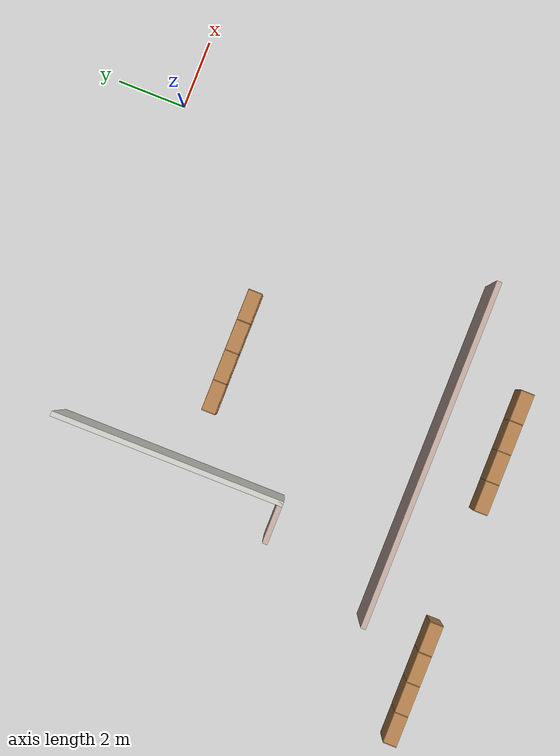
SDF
<sdf version="1.6">
 <world name="default">
  <model name="ground_plane">
   <static>1</static>
   <link name="link">
    <collision name="collision">
     <geometry><plane><normal>0 0 1</normal><size>100 100</size></plane></geometry>
     <surface><friction><ode><mu>100</mu><mu2>50</mu2></ode></friction></surface>
    </collision>
    <visual name="visual">
     <cast_shadows>0</cast_shadows>
     <geometry><plane><normal>0 0 1</normal><size>100 100</size></plane></geometry>
     <material>
      <script><uri>file://media/materials/scripts/gazebo.material</uri><name>Gazebo/Grey</name></script>
     </material>
    </visual>
   </link>
  </model>
  <model name="floor">
   <link name="Wall_107">
    <pose>-7.93599 -8.73612 0 0 -0 0</pose>
    <visual name="Wall_107_Visual">
     <pose>0 0 1.25 0 -0 0</pose>
     <geometry><box><size>10.0936 0.15 2.5</size></box></geometry>
     <material>
      <script><uri>file://media/materials/scripts/gazebo.material</uri><name>Gazebo/Grey</name></script>
      <ambient>0.760784 0.662745 0.627451 1</ambient>
     </material>
     <meta><layer>0</layer></meta>
    </visual>
    <collision name="Wall_107_Collision">
     <pose>0 0 1.25 0 -0 0</pose>
     <geometry><box><size>10.0936 0.15 2.5</size></box></geometry>
     <surface>
      <friction>
       <ode><mu>1</mu><mu2>1</mu2><fdir1>0 0 0</fdir1><slip1>0</slip1><slip2>0</slip2></ode>
       <torsional>
        <coefficient>1</coefficient>
        <patch_radius>0</patch_radius>
        <surface_radius>0</surface_radius>
        <use_patch_radius>1</use_patch_radius>
        <ode><slip>0</slip></ode>
       </torsional>
      </friction>
      <bounce><restitution_coefficient>0</restitution_coefficient><threshold>1e+06</threshold></bounce>
      <contact>
       <collide_without_contact>0</collide_without_contact>
       <collide_without_contact_bitmask>1</collide_without_contact_bitmask>
       <collide_bitmask>1</collide_bitmask>
       <ode>
        <soft_cfm>0</soft_cfm>
        <soft_erp>0.2</soft_erp>
        <kp>1e+13</kp>
        <kd>1</kd>
        <max_vel>0.01</max_vel>
        <min_depth>0</min_depth>
       </ode>
       <bullet>
        <split_impulse>1</split_impulse>
        <split_impulse_penetration_threshold>-0.01</split_impulse_penetration_threshold>
        <soft_cfm>0</soft_cfm>
        <soft_erp>0.2</soft_erp>
        <kp>1e+13</kp>
        <kd>1</kd>
       </bullet>
      </contact>
     </surface>
    </collision>
   </link>
   <link name="Wall_202">
    <pose>-10.6495 -2.11807 0 0 -0 1.5708</pose>
    <visual name="Wall_202_Visual">
     <pose>0 0 1.25 0 -0 0</pose>
     <geometry><box><size>6.75 0.15 2.5</size></box></geometry>
     <material>
      <script><uri>file://media/materials/scripts/gazebo.material</uri><name>Gazebo/CeilingTiled</name></script>
      <ambient>0.760784 0.662745 0.627451 1</ambient>
     </material>
     <meta><layer>0</layer></meta>
    </visual>
    <collision name="Wall_202_Collision">
     <pose>0 0 1.25 0 -0 0</pose>
     <geometry><box><size>6.75 0.15 2.5</size></box></geometry>
     <surface>
      <friction>
       <ode><mu>1</mu><mu2>1</mu2><fdir1>0 0 0</fdir1><slip1>0</slip1><slip2>0</slip2></ode>
       <torsional>
        <coefficient>1</coefficient>
        <patch_radius>0</patch_radius>
        <surface_radius>0</surface_radius>
        <use_patch_radius>1</use_patch_radius>
        <ode><slip>0</slip></ode>
       </torsional>
      </friction>
      <bounce><restitution_coefficient>0</restitution_coefficient><threshold>1e+06</threshold></bounce>
      <contact>
       <collide_without_contact>0</collide_without_contact>
       <collide_without_contact_bitmask>1</collide_without_contact_bitmask>
       <collide_bitmask>1</collide_bitmask>
       <ode>
        <soft_cfm>0</soft_cfm>
        <soft_erp>0.2</soft_erp>
        <kp>1e+13</kp>
        <kd>1</kd>
        <max_vel>0.01</max_vel>
        <min_depth>0</min_depth>
       </ode>
       <bullet>
        <split_impulse>1</split_impulse>
        <split_impulse_penetration_threshold>-0.01</split_impulse_penetration_threshold>
        <soft_cfm>0</soft_cfm>
        <soft_erp>0.2</soft_erp>
        <kp>1e+13</kp>
        <kd>1</kd>
       </bullet>
      </contact>
     </surface>
    </collision>
   </link>
   <link name="Wall_215">
    <pose>-11.1995 -5.41807 0 0 -0 3.14159</pose>
    <visual name="Wall_215_Visual">
     <pose>0 0 1.25 0 -0 0</pose>
     <geometry><box><size>1.25 0.15 2.5</size></box></geometry>
     <material>
      <script><uri>file://media/materials/scripts/gazebo.material</uri><name>Gazebo/Grey</name></script>
      <ambient>0.760784 0.662745 0.627451 1</ambient>
     </material>
     <meta><layer>0</layer></meta>
    </visual>
    <collision name="Wall_215_Collision">
     <pose>0 0 1.25 0 -0 0</pose>
     <geometry><box><size>1.25 0.15 2.5</size></box></geometry>
     <surface>
      <friction>
       <ode><mu>1</mu><mu2>1</mu2><fdir1>0 0 0</fdir1><slip1>0</slip1><slip2>0</slip2></ode>
       <torsional>
        <coefficient>1</coefficient>
        <patch_radius>0</patch_radius>
        <surface_radius>0</surface_radius>
        <use_patch_radius>1</use_patch_radius>
        <ode><slip>0</slip></ode>
       </torsional>
      </friction>
      <bounce><restitution_coefficient>0</restitution_coefficient><threshold>1e+06</threshold></bounce>
      <contact>
       <collide_without_contact>0</collide_without_contact>
       <collide_without_contact_bitmask>1</collide_without_contact_bitmask>
       <collide_bitmask>1</collide_bitmask>
       <ode>
        <soft_cfm>0</soft_cfm>
        <soft_erp>0.2</soft_erp>
        <kp>1e+13</kp>
        <kd>1</kd>
        <max_vel>0.01</max_vel>
        <min_depth>0</min_depth>
       </ode>
       <bullet>
        <split_impulse>1</split_impulse>
        <split_impulse_penetration_threshold>-0.01</split_impulse_penetration_threshold>
        <soft_cfm>0</soft_cfm>
        <soft_erp>0.2</soft_erp>
        <kp>1e+13</kp>
        <kd>1</kd>
       </bullet>
      </contact>
     </surface>
    </collision>
   </link>
   <static>1</static>
   <pose>1.26361 -1.27025 0 0 -0 0</pose>
  </model>
  <model name="Bookshelf-4_clone_1">
   <model name="bookshelf">
    <static>1</static>
    <link name="link">
     <inertial><mass>1</mass></inertial>
     <collision name="back">
      <pose>0 0.005 0.6 0 -0 0</pose>
      <geometry><box><size>0.9 0.01 1.2</size></box></geometry>
     </collision>
     <visual name="visual1">
      <pose>0 0.005 0.6 0 -0 0</pose>
      <geometry><box><size>0.9 0.01 1.2</size></box></geometry>
      <material>
       <script><uri>file://media/materials/scripts/gazebo.material</uri><name>Gazebo/Wood</name></script>
      </material>
     </visual>
     <collision name="left_side">
      <pose>0.45 -0.195 0.6 0 -0 0</pose>
      <geometry><box><size>0.02 0.4 1.2</size></box></geometry>
     </collision>
     <visual name="visual2">
      <pose>0.45 -0.195 0.6 0 -0 0</pose>
      <geometry><box><size>0.02 0.4 1.2</size></box></geometry>
      <material>
       <script><uri>file://media/materials/scripts/gazebo.material</uri><name>Gazebo/Wood</name></script>
      </material>
     </visual>
     <collision name="right_side">
      <pose>-0.45 -0.195 0.6 0 -0 0</pose>
      <geometry><box><size>0.02 0.4 1.2</size></box></geometry>
     </collision>
     <visual name="visual3">
      <pose>-0.45 -0.195 0.6 0 -0 0</pose>
      <geometry><box><size>0.02 0.4 1.2</size></box></geometry>
      <material>
       <script><uri>file://media/materials/scripts/gazebo.material</uri><name>Gazebo/Wood</name></script>
      </material>
     </visual>
     <collision name="bottom">
      <pose>0 -0.195 0.03 0 -0 0</pose>
      <geometry><box><size>0.88 0.4 0.06</size></box></geometry>
     </collision>
     <visual name="visual4">
      <pose>0 -0.195 0.03 0 -0 0</pose>
      <geometry><box><size>0.88 0.4 0.06</size></box></geometry>
      <material>
       <script><uri>file://media/materials/scripts/gazebo.material</uri><name>Gazebo/Wood</name></script>
      </material>
     </visual>
     <collision name="top">
      <pose>0 -0.195 1.19 0 -0 0</pose>
      <geometry><box><size>0.88 0.4 0.02</size></box></geometry>
     </collision>
     <visual name="visual5">
      <pose>0 -0.195 1.19 0 -0 0</pose>
      <geometry><box><size>0.88 0.4 0.02</size></box></geometry>
      <material>
       <script><uri>file://media/materials/scripts/gazebo.material</uri><name>Gazebo/Wood</name></script>
      </material>
     </visual>
     <collision name="low_shelf">
      <pose>0 -0.195 0.43 0 -0 0</pose>
      <geometry><box><size>0.88 0.4 0.02</size></box></geometry>
     </collision>
     <visual name="visual6">
      <pose>0 -0.195 0.43 0 -0 0</pose>
      <geometry><box><size>0.88 0.4 0.02</size></box></geometry>
      <material>
       <script><uri>file://media/materials/scripts/gazebo.material</uri><name>Gazebo/Wood</name></script>
      </material>
     </visual>
     <collision name="high_shelf">
      <pose>0 -0.195 0.8 0 -0 0</pose>
      <geometry><box><size>0.88 0.4 0.02</size></box></geometry>
     </collision>
     <visual name="visual7">
      <pose>0 -0.195 0.8 0 -0 0</pose>
      <geometry><box><size>0.88 0.4 0.02</size></box></geometry>
      <material>
       <script><uri>file://media/materials/scripts/gazebo.material</uri><name>Gazebo/Wood</name></script>
      </material>
     </visual>
    </link>
    <pose>-1.35671 -0.002097 0 0 -0 0</pose>
   </model>
   <model name="bookshelf_0">
    <static>1</static>
    <link name="link">
     <inertial><mass>1</mass></inertial>
     <collision name="back">
      <pose>0 0.005 0.6 0 -0 0</pose>
      <geometry><box><size>0.9 0.01 1.2</size></box></geometry>
     </collision>
     <visual name="visual1">
      <pose>0 0.005 0.6 0 -0 0</pose>
      <geometry><box><size>0.9 0.01 1.2</size></box></geometry>
      <material>
       <script><uri>file://media/materials/scripts/gazebo.material</uri><name>Gazebo/Wood</name></script>
      </material>
     </visual>
     <collision name="left_side">
      <pose>0.45 -0.195 0.6 0 -0 0</pose>
      <geometry><box><size>0.02 0.4 1.2</size></box></geometry>
     </collision>
     <visual name="visual2">
      <pose>0.45 -0.195 0.6 0 -0 0</pose>
      <geometry><box><size>0.02 0.4 1.2</size></box></geometry>
      <material>
       <script><uri>file://media/materials/scripts/gazebo.material</uri><name>Gazebo/Wood</name></script>
      </material>
     </visual>
     <collision name="right_side">
      <pose>-0.45 -0.195 0.6 0 -0 0</pose>
      <geometry><box><size>0.02 0.4 1.2</size></box></geometry>
     </collision>
     <visual name="visual3">
      <pose>-0.45 -0.195 0.6 0 -0 0</pose>
      <geometry><box><size>0.02 0.4 1.2</size></box></geometry>
      <material>
       <script><uri>file://media/materials/scripts/gazebo.material</uri><name>Gazebo/Wood</name></script>
      </material>
     </visual>
     <collision name="bottom">
      <pose>0 -0.195 0.03 0 -0 0</pose>
      <geometry><box><size>0.88 0.4 0.06</size></box></geometry>
     </collision>
     <visual name="visual4">
      <pose>0 -0.195 0.03 0 -0 0</pose>
      <geometry><box><size>0.88 0.4 0.06</size></box></geometry>
      <material>
       <script><uri>file://media/materials/scripts/gazebo.material</uri><name>Gazebo/Wood</name></script>
      </material>
     </visual>
     <collision name="top">
      <pose>0 -0.195 1.19 0 -0 0</pose>
      <geometry><box><size>0.88 0.4 0.02</size></box></geometry>
     </collision>
     <visual name="visual5">
      <pose>0 -0.195 1.19 0 -0 0</pose>
      <geometry><box><size>0.88 0.4 0.02</size></box></geometry>
      <material>
       <script><uri>file://media/materials/scripts/gazebo.material</uri><name>Gazebo/Wood</name></script>
      </material>
     </visual>
     <collision name="low_shelf">
      <pose>0 -0.195 0.43 0 -0 0</pose>
      <geometry><box><size>0.88 0.4 0.02</size></box></geometry>
     </collision>
     <visual name="visual6">
      <pose>0 -0.195 0.43 0 -0 0</pose>
      <geometry><box><size>0.88 0.4 0.02</size></box></geometry>
      <material>
       <script><uri>file://media/materials/scripts/gazebo.material</uri><name>Gazebo/Wood</name></script>
      </material>
     </visual>
     <collision name="high_shelf">
      <pose>0 -0.195 0.8 0 -0 0</pose>
      <geometry><box><size>0.88 0.4 0.02</size></box></geometry>
     </collision>
     <visual name="visual7">
      <pose>0 -0.195 0.8 0 -0 0</pose>
      <geometry><box><size>0.88 0.4 0.02</size></box></geometry>
      <material>
       <script><uri>file://media/materials/scripts/gazebo.material</uri><name>Gazebo/Wood</name></script>
      </material>
     </visual>
    </link>
    <pose>-0.452974 0.001386 0 0 -0 0</pose>
   </model>
   <model name="bookshelf_1">
    <static>1</static>
    <link name="link">
     <inertial><mass>1</mass></inertial>
     <collision name="back">
      <pose>0 0.005 0.6 0 -0 0</pose>
      <geometry><box><size>0.9 0.01 1.2</size></box></geometry>
     </collision>
     <visual name="visual1">
      <pose>0 0.005 0.6 0 -0 0</pose>
      <geometry><box><size>0.9 0.01 1.2</size></box></geometry>
      <material>
       <script><uri>file://media/materials/scripts/gazebo.material</uri><name>Gazebo/Wood</name></script>
      </material>
     </visual>
     <collision name="left_side">
      <pose>0.45 -0.195 0.6 0 -0 0</pose>
      <geometry><box><size>0.02 0.4 1.2</size></box></geometry>
     </collision>
     <visual name="visual2">
      <pose>0.45 -0.195 0.6 0 -0 0</pose>
      <geometry><box><size>0.02 0.4 1.2</size></box></geometry>
      <material>
       <script><uri>file://media/materials/scripts/gazebo.material</uri><name>Gazebo/Wood</name></script>
      </material>
     </visual>
     <collision name="right_side">
      <pose>-0.45 -0.195 0.6 0 -0 0</pose>
      <geometry><box><size>0.02 0.4 1.2</size></box></geometry>
     </collision>
     <visual name="visual3">
      <pose>-0.45 -0.195 0.6 0 -0 0</pose>
      <geometry><box><size>0.02 0.4 1.2</size></box></geometry>
      <material>
       <script><uri>file://media/materials/scripts/gazebo.material</uri><name>Gazebo/Wood</name></script>
      </material>
     </visual>
     <collision name="bottom">
      <pose>0 -0.195 0.03 0 -0 0</pose>
      <geometry><box><size>0.88 0.4 0.06</size></box></geometry>
     </collision>
     <visual name="visual4">
      <pose>0 -0.195 0.03 0 -0 0</pose>
      <geometry><box><size>0.88 0.4 0.06</size></box></geometry>
      <material>
       <script><uri>file://media/materials/scripts/gazebo.material</uri><name>Gazebo/Wood</name></script>
      </material>
     </visual>
     <collision name="top">
      <pose>0 -0.195 1.19 0 -0 0</pose>
      <geometry><box><size>0.88 0.4 0.02</size></box></geometry>
     </collision>
     <visual name="visual5">
      <pose>0 -0.195 1.19 0 -0 0</pose>
      <geometry><box><size>0.88 0.4 0.02</size></box></geometry>
      <material>
       <script><uri>file://media/materials/scripts/gazebo.material</uri><name>Gazebo/Wood</name></script>
      </material>
     </visual>
     <collision name="low_shelf">
      <pose>0 -0.195 0.43 0 -0 0</pose>
      <geometry><box><size>0.88 0.4 0.02</size></box></geometry>
     </collision>
     <visual name="visual6">
      <pose>0 -0.195 0.43 0 -0 0</pose>
      <geometry><box><size>0.88 0.4 0.02</size></box></geometry>
      <material>
       <script><uri>file://media/materials/scripts/gazebo.material</uri><name>Gazebo/Wood</name></script>
      </material>
     </visual>
     <collision name="high_shelf">
      <pose>0 -0.195 0.8 0 -0 0</pose>
      <geometry><box><size>0.88 0.4 0.02</size></box></geometry>
     </collision>
     <visual name="visual7">
      <pose>0 -0.195 0.8 0 -0 0</pose>
      <geometry><box><size>0.88 0.4 0.02</size></box></geometry>
      <material>
       <script><uri>file://media/materials/scripts/gazebo.material</uri><name>Gazebo/Wood</name></script>
      </material>
     </visual>
    </link>
    <pose>0.450456 0.000733 0 0 -0 0</pose>
   </model>
   <model name="bookshelf_2">
    <static>1</static>
    <link name="link">
     <inertial><mass>1</mass></inertial>
     <collision name="back">
      <pose>0 0.005 0.6 0 -0 0</pose>
      <geometry><box><size>0.9 0.01 1.2</size></box></geometry>
     </collision>
     <visual name="visual1">
      <pose>0 0.005 0.6 0 -0 0</pose>
      <geometry><box><size>0.9 0.01 1.2</size></box></geometry>
      <material>
       <script><uri>file://media/materials/scripts/gazebo.material</uri><name>Gazebo/Wood</name></script>
      </material>
     </visual>
     <collision name="left_side">
      <pose>0.45 -0.195 0.6 0 -0 0</pose>
      <geometry><box><size>0.02 0.4 1.2</size></box></geometry>
     </collision>
     <visual name="visual2">
      <pose>0.45 -0.195 0.6 0 -0 0</pose>
      <geometry><box><size>0.02 0.4 1.2</size></box></geometry>
      <material>
       <script><uri>file://media/materials/scripts/gazebo.material</uri><name>Gazebo/Wood</name></script>
      </material>
     </visual>
     <collision name="right_side">
      <pose>-0.45 -0.195 0.6 0 -0 0</pose>
      <geometry><box><size>0.02 0.4 1.2</size></box></geometry>
     </collision>
     <visual name="visual3">
      <pose>-0.45 -0.195 0.6 0 -0 0</pose>
      <geometry><box><size>0.02 0.4 1.2</size></box></geometry>
      <material>
       <script><uri>file://media/materials/scripts/gazebo.material</uri><name>Gazebo/Wood</name></script>
      </material>
     </visual>
     <collision name="bottom">
      <pose>0 -0.195 0.03 0 -0 0</pose>
      <geometry><box><size>0.88 0.4 0.06</size></box></geometry>
     </collision>
     <visual name="visual4">
      <pose>0 -0.195 0.03 0 -0 0</pose>
      <geometry><box><size>0.88 0.4 0.06</size></box></geometry>
      <material>
       <script><uri>file://media/materials/scripts/gazebo.material</uri><name>Gazebo/Wood</name></script>
      </material>
     </visual>
     <collision name="top">
      <pose>0 -0.195 1.19 0 -0 0</pose>
      <geometry><box><size>0.88 0.4 0.02</size></box></geometry>
     </collision>
     <visual name="visual5">
      <pose>0 -0.195 1.19 0 -0 0</pose>
      <geometry><box><size>0.88 0.4 0.02</size></box></geometry>
      <material>
       <script><uri>file://media/materials/scripts/gazebo.material</uri><name>Gazebo/Wood</name></script>
      </material>
     </visual>
     <collision name="low_shelf">
      <pose>0 -0.195 0.43 0 -0 0</pose>
      <geometry><box><size>0.88 0.4 0.02</size></box></geometry>
     </collision>
     <visual name="visual6">
      <pose>0 -0.195 0.43 0 -0 0</pose>
      <geometry><box><size>0.88 0.4 0.02</size></box></geometry>
      <material>
       <script><uri>file://media/materials/scripts/gazebo.material</uri><name>Gazebo/Wood</name></script>
      </material>
     </visual>
     <collision name="high_shelf">
      <pose>0 -0.195 0.8 0 -0 0</pose>
      <geometry><box><size>0.88 0.4 0.02</size></box></geometry>
     </collision>
     <visual name="visual7">
      <pose>0 -0.195 0.8 0 -0 0</pose>
      <geometry><box><size>0.88 0.4 0.02</size></box></geometry>
      <material>
       <script><uri>file://media/materials/scripts/gazebo.material</uri><name>Gazebo/Wood</name></script>
      </material>
     </visual>
    </link>
    <pose>1.35922 -1.7e-05 0 0 -0 0</pose>
   </model>
   <static>0</static>
   <pose>-6.04191 -3.69996 0 0 -0 0</pose>
  </model>
  <model name="Bookshelf-4_clone_10">
   <model name="bookshelf">
    <static>1</static>
    <link name="link">
     <inertial><mass>1</mass></inertial>
     <collision name="back">
      <pose>0 0.005 0.6 0 -0 0</pose>
      <geometry><box><size>0.9 0.01 1.2</size></box></geometry>
     </collision>
     <visual name="visual1">
      <pose>0 0.005 0.6 0 -0 0</pose>
      <geometry><box><size>0.9 0.01 1.2</size></box></geometry>
      <material>
       <script><uri>file://media/materials/scripts/gazebo.material</uri><name>Gazebo/Wood</name></script>
      </material>
     </visual>
     <collision name="left_side">
      <pose>0.45 -0.195 0.6 0 -0 0</pose>
      <geometry><box><size>0.02 0.4 1.2</size></box></geometry>
     </collision>
     <visual name="visual2">
      <pose>0.45 -0.195 0.6 0 -0 0</pose>
      <geometry><box><size>0.02 0.4 1.2</size></box></geometry>
      <material>
       <script><uri>file://media/materials/scripts/gazebo.material</uri><name>Gazebo/Wood</name></script>
      </material>
     </visual>
     <collision name="right_side">
      <pose>-0.45 -0.195 0.6 0 -0 0</pose>
      <geometry><box><size>0.02 0.4 1.2</size></box></geometry>
     </collision>
     <visual name="visual3">
      <pose>-0.45 -0.195 0.6 0 -0 0</pose>
      <geometry><box><size>0.02 0.4 1.2</size></box></geometry>
      <material>
       <script><uri>file://media/materials/scripts/gazebo.material</uri><name>Gazebo/Wood</name></script>
      </material>
     </visual>
     <collision name="bottom">
      <pose>0 -0.195 0.03 0 -0 0</pose>
      <geometry><box><size>0.88 0.4 0.06</size></box></geometry>
     </collision>
     <visual name="visual4">
      <pose>0 -0.195 0.03 0 -0 0</pose>
      <geometry><box><size>0.88 0.4 0.06</size></box></geometry>
      <material>
       <script><uri>file://media/materials/scripts/gazebo.material</uri><name>Gazebo/Wood</name></script>
      </material>
     </visual>
     <collision name="top">
      <pose>0 -0.195 1.19 0 -0 0</pose>
      <geometry><box><size>0.88 0.4 0.02</size></box></geometry>
     </collision>
     <visual name="visual5">
      <pose>0 -0.195 1.19 0 -0 0</pose>
      <geometry><box><size>0.88 0.4 0.02</size></box></geometry>
      <material>
       <script><uri>file://media/materials/scripts/gazebo.material</uri><name>Gazebo/Wood</name></script>
      </material>
     </visual>
     <collision name="low_shelf">
      <pose>0 -0.195 0.43 0 -0 0</pose>
      <geometry><box><size>0.88 0.4 0.02</size></box></geometry>
     </collision>
     <visual name="visual6">
      <pose>0 -0.195 0.43 0 -0 0</pose>
      <geometry><box><size>0.88 0.4 0.02</size></box></geometry>
      <material>
       <script><uri>file://media/materials/scripts/gazebo.material</uri><name>Gazebo/Wood</name></script>
      </material>
     </visual>
     <collision name="high_shelf">
      <pose>0 -0.195 0.8 0 -0 0</pose>
      <geometry><box><size>0.88 0.4 0.02</size></box></geometry>
     </collision>
     <visual name="visual7">
      <pose>0 -0.195 0.8 0 -0 0</pose>
      <geometry><box><size>0.88 0.4 0.02</size></box></geometry>
      <material>
       <script><uri>file://media/materials/scripts/gazebo.material</uri><name>Gazebo/Wood</name></script>
      </material>
     </visual>
    </link>
    <pose>-1.35671 -0.002097 0 0 -0 0</pose>
   </model>
   <model name="bookshelf_0">
    <static>1</static>
    <link name="link">
     <inertial><mass>1</mass></inertial>
     <collision name="back">
      <pose>0 0.005 0.6 0 -0 0</pose>
      <geometry><box><size>0.9 0.01 1.2</size></box></geometry>
     </collision>
     <visual name="visual1">
      <pose>0 0.005 0.6 0 -0 0</pose>
      <geometry><box><size>0.9 0.01 1.2</size></box></geometry>
      <material>
       <script><uri>file://media/materials/scripts/gazebo.material</uri><name>Gazebo/Wood</name></script>
      </material>
     </visual>
     <collision name="left_side">
      <pose>0.45 -0.195 0.6 0 -0 0</pose>
      <geometry><box><size>0.02 0.4 1.2</size></box></geometry>
     </collision>
     <visual name="visual2">
      <pose>0.45 -0.195 0.6 0 -0 0</pose>
      <geometry><box><size>0.02 0.4 1.2</size></box></geometry>
      <material>
       <script><uri>file://media/materials/scripts/gazebo.material</uri><name>Gazebo/Wood</name></script>
      </material>
     </visual>
     <collision name="right_side">
      <pose>-0.45 -0.195 0.6 0 -0 0</pose>
      <geometry><box><size>0.02 0.4 1.2</size></box></geometry>
     </collision>
     <visual name="visual3">
      <pose>-0.45 -0.195 0.6 0 -0 0</pose>
      <geometry><box><size>0.02 0.4 1.2</size></box></geometry>
      <material>
       <script><uri>file://media/materials/scripts/gazebo.material</uri><name>Gazebo/Wood</name></script>
      </material>
     </visual>
     <collision name="bottom">
      <pose>0 -0.195 0.03 0 -0 0</pose>
      <geometry><box><size>0.88 0.4 0.06</size></box></geometry>
     </collision>
     <visual name="visual4">
      <pose>0 -0.195 0.03 0 -0 0</pose>
      <geometry><box><size>0.88 0.4 0.06</size></box></geometry>
      <material>
       <script><uri>file://media/materials/scripts/gazebo.material</uri><name>Gazebo/Wood</name></script>
      </material>
     </visual>
     <collision name="top">
      <pose>0 -0.195 1.19 0 -0 0</pose>
      <geometry><box><size>0.88 0.4 0.02</size></box></geometry>
     </collision>
     <visual name="visual5">
      <pose>0 -0.195 1.19 0 -0 0</pose>
      <geometry><box><size>0.88 0.4 0.02</size></box></geometry>
      <material>
       <script><uri>file://media/materials/scripts/gazebo.material</uri><name>Gazebo/Wood</name></script>
      </material>
     </visual>
     <collision name="low_shelf">
      <pose>0 -0.195 0.43 0 -0 0</pose>
      <geometry><box><size>0.88 0.4 0.02</size></box></geometry>
     </collision>
     <visual name="visual6">
      <pose>0 -0.195 0.43 0 -0 0</pose>
      <geometry><box><size>0.88 0.4 0.02</size></box></geometry>
      <material>
       <script><uri>file://media/materials/scripts/gazebo.material</uri><name>Gazebo/Wood</name></script>
      </material>
     </visual>
     <collision name="high_shelf">
      <pose>0 -0.195 0.8 0 -0 0</pose>
      <geometry><box><size>0.88 0.4 0.02</size></box></geometry>
     </collision>
     <visual name="visual7">
      <pose>0 -0.195 0.8 0 -0 0</pose>
      <geometry><box><size>0.88 0.4 0.02</size></box></geometry>
      <material>
       <script><uri>file://media/materials/scripts/gazebo.material</uri><name>Gazebo/Wood</name></script>
      </material>
     </visual>
    </link>
    <pose>-0.452974 0.001386 0 0 -0 0</pose>
   </model>
   <model name="bookshelf_1">
    <static>1</static>
    <link name="link">
     <inertial><mass>1</mass></inertial>
     <collision name="back">
      <pose>0 0.005 0.6 0 -0 0</pose>
      <geometry><box><size>0.9 0.01 1.2</size></box></geometry>
     </collision>
     <visual name="visual1">
      <pose>0 0.005 0.6 0 -0 0</pose>
      <geometry><box><size>0.9 0.01 1.2</size></box></geometry>
      <material>
       <script><uri>file://media/materials/scripts/gazebo.material</uri><name>Gazebo/Wood</name></script>
      </material>
     </visual>
     <collision name="left_side">
      <pose>0.45 -0.195 0.6 0 -0 0</pose>
      <geometry><box><size>0.02 0.4 1.2</size></box></geometry>
     </collision>
     <visual name="visual2">
      <pose>0.45 -0.195 0.6 0 -0 0</pose>
      <geometry><box><size>0.02 0.4 1.2</size></box></geometry>
      <material>
       <script><uri>file://media/materials/scripts/gazebo.material</uri><name>Gazebo/Wood</name></script>
      </material>
     </visual>
     <collision name="right_side">
      <pose>-0.45 -0.195 0.6 0 -0 0</pose>
      <geometry><box><size>0.02 0.4 1.2</size></box></geometry>
     </collision>
     <visual name="visual3">
      <pose>-0.45 -0.195 0.6 0 -0 0</pose>
      <geometry><box><size>0.02 0.4 1.2</size></box></geometry>
      <material>
       <script><uri>file://media/materials/scripts/gazebo.material</uri><name>Gazebo/Wood</name></script>
      </material>
     </visual>
     <collision name="bottom">
      <pose>0 -0.195 0.03 0 -0 0</pose>
      <geometry><box><size>0.88 0.4 0.06</size></box></geometry>
     </collision>
     <visual name="visual4">
      <pose>0 -0.195 0.03 0 -0 0</pose>
      <geometry><box><size>0.88 0.4 0.06</size></box></geometry>
      <material>
       <script><uri>file://media/materials/scripts/gazebo.material</uri><name>Gazebo/Wood</name></script>
      </material>
     </visual>
     <collision name="top">
      <pose>0 -0.195 1.19 0 -0 0</pose>
      <geometry><box><size>0.88 0.4 0.02</size></box></geometry>
     </collision>
     <visual name="visual5">
      <pose>0 -0.195 1.19 0 -0 0</pose>
      <geometry><box><size>0.88 0.4 0.02</size></box></geometry>
      <material>
       <script><uri>file://media/materials/scripts/gazebo.material</uri><name>Gazebo/Wood</name></script>
      </material>
     </visual>
     <collision name="low_shelf">
      <pose>0 -0.195 0.43 0 -0 0</pose>
      <geometry><box><size>0.88 0.4 0.02</size></box></geometry>
     </collision>
     <visual name="visual6">
      <pose>0 -0.195 0.43 0 -0 0</pose>
      <geometry><box><size>0.88 0.4 0.02</size></box></geometry>
      <material>
       <script><uri>file://media/materials/scripts/gazebo.material</uri><name>Gazebo/Wood</name></script>
      </material>
     </visual>
     <collision name="high_shelf">
      <pose>0 -0.195 0.8 0 -0 0</pose>
      <geometry><box><size>0.88 0.4 0.02</size></box></geometry>
     </collision>
     <visual name="visual7">
      <pose>0 -0.195 0.8 0 -0 0</pose>
      <geometry><box><size>0.88 0.4 0.02</size></box></geometry>
      <material>
       <script><uri>file://media/materials/scripts/gazebo.material</uri><name>Gazebo/Wood</name></script>
      </material>
     </visual>
    </link>
    <pose>0.450456 0.000733 0 0 -0 0</pose>
   </model>
   <model name="bookshelf_2">
    <static>1</static>
    <link name="link">
     <inertial><mass>1</mass></inertial>
     <collision name="back">
      <pose>0 0.005 0.6 0 -0 0</pose>
      <geometry><box><size>0.9 0.01 1.2</size></box></geometry>
     </collision>
     <visual name="visual1">
      <pose>0 0.005 0.6 0 -0 0</pose>
      <geometry><box><size>0.9 0.01 1.2</size></box></geometry>
      <material>
       <script><uri>file://media/materials/scripts/gazebo.material</uri><name>Gazebo/Wood</name></script>
      </material>
     </visual>
     <collision name="left_side">
      <pose>0.45 -0.195 0.6 0 -0 0</pose>
      <geometry><box><size>0.02 0.4 1.2</size></box></geometry>
     </collision>
     <visual name="visual2">
      <pose>0.45 -0.195 0.6 0 -0 0</pose>
      <geometry><box><size>0.02 0.4 1.2</size></box></geometry>
      <material>
       <script><uri>file://media/materials/scripts/gazebo.material</uri><name>Gazebo/Wood</name></script>
      </material>
     </visual>
     <collision name="right_side">
      <pose>-0.45 -0.195 0.6 0 -0 0</pose>
      <geometry><box><size>0.02 0.4 1.2</size></box></geometry>
     </collision>
     <visual name="visual3">
      <pose>-0.45 -0.195 0.6 0 -0 0</pose>
      <geometry><box><size>0.02 0.4 1.2</size></box></geometry>
      <material>
       <script><uri>file://media/materials/scripts/gazebo.material</uri><name>Gazebo/Wood</name></script>
      </material>
     </visual>
     <collision name="bottom">
      <pose>0 -0.195 0.03 0 -0 0</pose>
      <geometry><box><size>0.88 0.4 0.06</size></box></geometry>
     </collision>
     <visual name="visual4">
      <pose>0 -0.195 0.03 0 -0 0</pose>
      <geometry><box><size>0.88 0.4 0.06</size></box></geometry>
      <material>
       <script><uri>file://media/materials/scripts/gazebo.material</uri><name>Gazebo/Wood</name></script>
      </material>
     </visual>
     <collision name="top">
      <pose>0 -0.195 1.19 0 -0 0</pose>
      <geometry><box><size>0.88 0.4 0.02</size></box></geometry>
     </collision>
     <visual name="visual5">
      <pose>0 -0.195 1.19 0 -0 0</pose>
      <geometry><box><size>0.88 0.4 0.02</size></box></geometry>
      <material>
       <script><uri>file://media/materials/scripts/gazebo.material</uri><name>Gazebo/Wood</name></script>
      </material>
     </visual>
     <collision name="low_shelf">
      <pose>0 -0.195 0.43 0 -0 0</pose>
      <geometry><box><size>0.88 0.4 0.02</size></box></geometry>
     </collision>
     <visual name="visual6">
      <pose>0 -0.195 0.43 0 -0 0</pose>
      <geometry><box><size>0.88 0.4 0.02</size></box></geometry>
      <material>
       <script><uri>file://media/materials/scripts/gazebo.material</uri><name>Gazebo/Wood</name></script>
      </material>
     </visual>
     <collision name="high_shelf">
      <pose>0 -0.195 0.8 0 -0 0</pose>
      <geometry><box><size>0.88 0.4 0.02</size></box></geometry>
     </collision>
     <visual name="visual7">
      <pose>0 -0.195 0.8 0 -0 0</pose>
      <geometry><box><size>0.88 0.4 0.02</size></box></geometry>
      <material>
       <script><uri>file://media/materials/scripts/gazebo.material</uri><name>Gazebo/Wood</name></script>
      </material>
     </visual>
    </link>
    <pose>1.35922 -1.7e-05 0 0 -0 0</pose>
   </model>
   <static>0</static>
   <pose>-5.88447 -11.818 0 0 -0 0</pose>
  </model>
  <model name="Bookshelf-4_clone_12">
   <model name="bookshelf">
    <static>1</static>
    <link name="link">
     <inertial><mass>1</mass></inertial>
     <collision name="back">
      <pose>0 0.005 0.6 0 -0 0</pose>
      <geometry><box><size>0.9 0.01 1.2</size></box></geometry>
     </collision>
     <visual name="visual1">
      <pose>0 0.005 0.6 0 -0 0</pose>
      <geometry><box><size>0.9 0.01 1.2</size></box></geometry>
      <material>
       <script><uri>file://media/materials/scripts/gazebo.material</uri><name>Gazebo/Wood</name></script>
      </material>
     </visual>
     <collision name="left_side">
      <pose>0.45 -0.195 0.6 0 -0 0</pose>
      <geometry><box><size>0.02 0.4 1.2</size></box></geometry>
     </collision>
     <visual name="visual2">
      <pose>0.45 -0.195 0.6 0 -0 0</pose>
      <geometry><box><size>0.02 0.4 1.2</size></box></geometry>
      <material>
       <script><uri>file://media/materials/scripts/gazebo.material</uri><name>Gazebo/Wood</name></script>
      </material>
     </visual>
     <collision name="right_side">
      <pose>-0.45 -0.195 0.6 0 -0 0</pose>
      <geometry><box><size>0.02 0.4 1.2</size></box></geometry>
     </collision>
     <visual name="visual3">
      <pose>-0.45 -0.195 0.6 0 -0 0</pose>
      <geometry><box><size>0.02 0.4 1.2</size></box></geometry>
      <material>
       <script><uri>file://media/materials/scripts/gazebo.material</uri><name>Gazebo/Wood</name></script>
      </material>
     </visual>
     <collision name="bottom">
      <pose>0 -0.195 0.03 0 -0 0</pose>
      <geometry><box><size>0.88 0.4 0.06</size></box></geometry>
     </collision>
     <visual name="visual4">
      <pose>0 -0.195 0.03 0 -0 0</pose>
      <geometry><box><size>0.88 0.4 0.06</size></box></geometry>
      <material>
       <script><uri>file://media/materials/scripts/gazebo.material</uri><name>Gazebo/Wood</name></script>
      </material>
     </visual>
     <collision name="top">
      <pose>0 -0.195 1.19 0 -0 0</pose>
      <geometry><box><size>0.88 0.4 0.02</size></box></geometry>
     </collision>
     <visual name="visual5">
      <pose>0 -0.195 1.19 0 -0 0</pose>
      <geometry><box><size>0.88 0.4 0.02</size></box></geometry>
      <material>
       <script><uri>file://media/materials/scripts/gazebo.material</uri><name>Gazebo/Wood</name></script>
      </material>
     </visual>
     <collision name="low_shelf">
      <pose>0 -0.195 0.43 0 -0 0</pose>
      <geometry><box><size>0.88 0.4 0.02</size></box></geometry>
     </collision>
     <visual name="visual6">
      <pose>0 -0.195 0.43 0 -0 0</pose>
      <geometry><box><size>0.88 0.4 0.02</size></box></geometry>
      <material>
       <script><uri>file://media/materials/scripts/gazebo.material</uri><name>Gazebo/Wood</name></script>
      </material>
     </visual>
     <collision name="high_shelf">
      <pose>0 -0.195 0.8 0 -0 0</pose>
      <geometry><box><size>0.88 0.4 0.02</size></box></geometry>
     </collision>
     <visual name="visual7">
      <pose>0 -0.195 0.8 0 -0 0</pose>
      <geometry><box><size>0.88 0.4 0.02</size></box></geometry>
      <material>
       <script><uri>file://media/materials/scripts/gazebo.material</uri><name>Gazebo/Wood</name></script>
      </material>
     </visual>
    </link>
    <pose>-1.35671 -0.002097 0 0 -0 0</pose>
   </model>
   <model name="bookshelf_0">
    <static>1</static>
    <link name="link">
     <inertial><mass>1</mass></inertial>
     <collision name="back">
      <pose>0 0.005 0.6 0 -0 0</pose>
      <geometry><box><size>0.9 0.01 1.2</size></box></geometry>
     </collision>
     <visual name="visual1">
      <pose>0 0.005 0.6 0 -0 0</pose>
      <geometry><box><size>0.9 0.01 1.2</size></box></geometry>
      <material>
       <script><uri>file://media/materials/scripts/gazebo.material</uri><name>Gazebo/Wood</name></script>
      </material>
     </visual>
     <collision name="left_side">
      <pose>0.45 -0.195 0.6 0 -0 0</pose>
      <geometry><box><size>0.02 0.4 1.2</size></box></geometry>
     </collision>
     <visual name="visual2">
      <pose>0.45 -0.195 0.6 0 -0 0</pose>
      <geometry><box><size>0.02 0.4 1.2</size></box></geometry>
      <material>
       <script><uri>file://media/materials/scripts/gazebo.material</uri><name>Gazebo/Wood</name></script>
      </material>
     </visual>
     <collision name="right_side">
      <pose>-0.45 -0.195 0.6 0 -0 0</pose>
      <geometry><box><size>0.02 0.4 1.2</size></box></geometry>
     </collision>
     <visual name="visual3">
      <pose>-0.45 -0.195 0.6 0 -0 0</pose>
      <geometry><box><size>0.02 0.4 1.2</size></box></geometry>
      <material>
       <script><uri>file://media/materials/scripts/gazebo.material</uri><name>Gazebo/Wood</name></script>
      </material>
     </visual>
     <collision name="bottom">
      <pose>0 -0.195 0.03 0 -0 0</pose>
      <geometry><box><size>0.88 0.4 0.06</size></box></geometry>
     </collision>
     <visual name="visual4">
      <pose>0 -0.195 0.03 0 -0 0</pose>
      <geometry><box><size>0.88 0.4 0.06</size></box></geometry>
      <material>
       <script><uri>file://media/materials/scripts/gazebo.material</uri><name>Gazebo/Wood</name></script>
      </material>
     </visual>
     <collision name="top">
      <pose>0 -0.195 1.19 0 -0 0</pose>
      <geometry><box><size>0.88 0.4 0.02</size></box></geometry>
     </collision>
     <visual name="visual5">
      <pose>0 -0.195 1.19 0 -0 0</pose>
      <geometry><box><size>0.88 0.4 0.02</size></box></geometry>
      <material>
       <script><uri>file://media/materials/scripts/gazebo.material</uri><name>Gazebo/Wood</name></script>
      </material>
     </visual>
     <collision name="low_shelf">
      <pose>0 -0.195 0.43 0 -0 0</pose>
      <geometry><box><size>0.88 0.4 0.02</size></box></geometry>
     </collision>
     <visual name="visual6">
      <pose>0 -0.195 0.43 0 -0 0</pose>
      <geometry><box><size>0.88 0.4 0.02</size></box></geometry>
      <material>
       <script><uri>file://media/materials/scripts/gazebo.material</uri><name>Gazebo/Wood</name></script>
      </material>
     </visual>
     <collision name="high_shelf">
      <pose>0 -0.195 0.8 0 -0 0</pose>
      <geometry><box><size>0.88 0.4 0.02</size></box></geometry>
     </collision>
     <visual name="visual7">
      <pose>0 -0.195 0.8 0 -0 0</pose>
      <geometry><box><size>0.88 0.4 0.02</size></box></geometry>
      <material>
       <script><uri>file://media/materials/scripts/gazebo.material</uri><name>Gazebo/Wood</name></script>
      </material>
     </visual>
    </link>
    <pose>-0.452974 0.001386 0 0 -0 0</pose>
   </model>
   <model name="bookshelf_1">
    <static>1</static>
    <link name="link">
     <inertial><mass>1</mass></inertial>
     <collision name="back">
      <pose>0 0.005 0.6 0 -0 0</pose>
      <geometry><box><size>0.9 0.01 1.2</size></box></geometry>
     </collision>
     <visual name="visual1">
      <pose>0 0.005 0.6 0 -0 0</pose>
      <geometry><box><size>0.9 0.01 1.2</size></box></geometry>
      <material>
       <script><uri>file://media/materials/scripts/gazebo.material</uri><name>Gazebo/Wood</name></script>
      </material>
     </visual>
     <collision name="left_side">
      <pose>0.45 -0.195 0.6 0 -0 0</pose>
      <geometry><box><size>0.02 0.4 1.2</size></box></geometry>
     </collision>
     <visual name="visual2">
      <pose>0.45 -0.195 0.6 0 -0 0</pose>
      <geometry><box><size>0.02 0.4 1.2</size></box></geometry>
      <material>
       <script><uri>file://media/materials/scripts/gazebo.material</uri><name>Gazebo/Wood</name></script>
      </material>
     </visual>
     <collision name="right_side">
      <pose>-0.45 -0.195 0.6 0 -0 0</pose>
      <geometry><box><size>0.02 0.4 1.2</size></box></geometry>
     </collision>
     <visual name="visual3">
      <pose>-0.45 -0.195 0.6 0 -0 0</pose>
      <geometry><box><size>0.02 0.4 1.2</size></box></geometry>
      <material>
       <script><uri>file://media/materials/scripts/gazebo.material</uri><name>Gazebo/Wood</name></script>
      </material>
     </visual>
     <collision name="bottom">
      <pose>0 -0.195 0.03 0 -0 0</pose>
      <geometry><box><size>0.88 0.4 0.06</size></box></geometry>
     </collision>
     <visual name="visual4">
      <pose>0 -0.195 0.03 0 -0 0</pose>
      <geometry><box><size>0.88 0.4 0.06</size></box></geometry>
      <material>
       <script><uri>file://media/materials/scripts/gazebo.material</uri><name>Gazebo/Wood</name></script>
      </material>
     </visual>
     <collision name="top">
      <pose>0 -0.195 1.19 0 -0 0</pose>
      <geometry><box><size>0.88 0.4 0.02</size></box></geometry>
     </collision>
     <visual name="visual5">
      <pose>0 -0.195 1.19 0 -0 0</pose>
      <geometry><box><size>0.88 0.4 0.02</size></box></geometry>
      <material>
       <script><uri>file://media/materials/scripts/gazebo.material</uri><name>Gazebo/Wood</name></script>
      </material>
     </visual>
     <collision name="low_shelf">
      <pose>0 -0.195 0.43 0 -0 0</pose>
      <geometry><box><size>0.88 0.4 0.02</size></box></geometry>
     </collision>
     <visual name="visual6">
      <pose>0 -0.195 0.43 0 -0 0</pose>
      <geometry><box><size>0.88 0.4 0.02</size></box></geometry>
      <material>
       <script><uri>file://media/materials/scripts/gazebo.material</uri><name>Gazebo/Wood</name></script>
      </material>
     </visual>
     <collision name="high_shelf">
      <pose>0 -0.195 0.8 0 -0 0</pose>
      <geometry><box><size>0.88 0.4 0.02</size></box></geometry>
     </collision>
     <visual name="visual7">
      <pose>0 -0.195 0.8 0 -0 0</pose>
      <geometry><box><size>0.88 0.4 0.02</size></box></geometry>
      <material>
       <script><uri>file://media/materials/scripts/gazebo.material</uri><name>Gazebo/Wood</name></script>
      </material>
     </visual>
    </link>
    <pose>0.450456 0.000733 0 0 -0 0</pose>
   </model>
   <model name="bookshelf_2">
    <static>1</static>
    <link name="link">
     <inertial><mass>1</mass></inertial>
     <collision name="back">
      <pose>0 0.005 0.6 0 -0 0</pose>
      <geometry><box><size>0.9 0.01 1.2</size></box></geometry>
     </collision>
     <visual name="visual1">
      <pose>0 0.005 0.6 0 -0 0</pose>
      <geometry><box><size>0.9 0.01 1.2</size></box></geometry>
      <material>
       <script><uri>file://media/materials/scripts/gazebo.material</uri><name>Gazebo/Wood</name></script>
      </material>
     </visual>
     <collision name="left_side">
      <pose>0.45 -0.195 0.6 0 -0 0</pose>
      <geometry><box><size>0.02 0.4 1.2</size></box></geometry>
     </collision>
     <visual name="visual2">
      <pose>0.45 -0.195 0.6 0 -0 0</pose>
      <geometry><box><size>0.02 0.4 1.2</size></box></geometry>
      <material>
       <script><uri>file://media/materials/scripts/gazebo.material</uri><name>Gazebo/Wood</name></script>
      </material>
     </visual>
     <collision name="right_side">
      <pose>-0.45 -0.195 0.6 0 -0 0</pose>
      <geometry><box><size>0.02 0.4 1.2</size></box></geometry>
     </collision>
     <visual name="visual3">
      <pose>-0.45 -0.195 0.6 0 -0 0</pose>
      <geometry><box><size>0.02 0.4 1.2</size></box></geometry>
      <material>
       <script><uri>file://media/materials/scripts/gazebo.material</uri><name>Gazebo/Wood</name></script>
      </material>
     </visual>
     <collision name="bottom">
      <pose>0 -0.195 0.03 0 -0 0</pose>
      <geometry><box><size>0.88 0.4 0.06</size></box></geometry>
     </collision>
     <visual name="visual4">
      <pose>0 -0.195 0.03 0 -0 0</pose>
      <geometry><box><size>0.88 0.4 0.06</size></box></geometry>
      <material>
       <script><uri>file://media/materials/scripts/gazebo.material</uri><name>Gazebo/Wood</name></script>
      </material>
     </visual>
     <collision name="top">
      <pose>0 -0.195 1.19 0 -0 0</pose>
      <geometry><box><size>0.88 0.4 0.02</size></box></geometry>
     </collision>
     <visual name="visual5">
      <pose>0 -0.195 1.19 0 -0 0</pose>
      <geometry><box><size>0.88 0.4 0.02</size></box></geometry>
      <material>
       <script><uri>file://media/materials/scripts/gazebo.material</uri><name>Gazebo/Wood</name></script>
      </material>
     </visual>
     <collision name="low_shelf">
      <pose>0 -0.195 0.43 0 -0 0</pose>
      <geometry><box><size>0.88 0.4 0.02</size></box></geometry>
     </collision>
     <visual name="visual6">
      <pose>0 -0.195 0.43 0 -0 0</pose>
      <geometry><box><size>0.88 0.4 0.02</size></box></geometry>
      <material>
       <script><uri>file://media/materials/scripts/gazebo.material</uri><name>Gazebo/Wood</name></script>
      </material>
     </visual>
     <collision name="high_shelf">
      <pose>0 -0.195 0.8 0 -0 0</pose>
      <geometry><box><size>0.88 0.4 0.02</size></box></geometry>
     </collision>
     <visual name="visual7">
      <pose>0 -0.195 0.8 0 -0 0</pose>
      <geometry><box><size>0.88 0.4 0.02</size></box></geometry>
      <material>
       <script><uri>file://media/materials/scripts/gazebo.material</uri><name>Gazebo/Wood</name></script>
      </material>
     </visual>
    </link>
    <pose>1.35922 -1.7e-05 0 0 -0 0</pose>
   </model>
   <static>0</static>
   <pose>-12.8354 -11.818 0 0 -0 0</pose>
  </model>
 </world>
</sdf>
